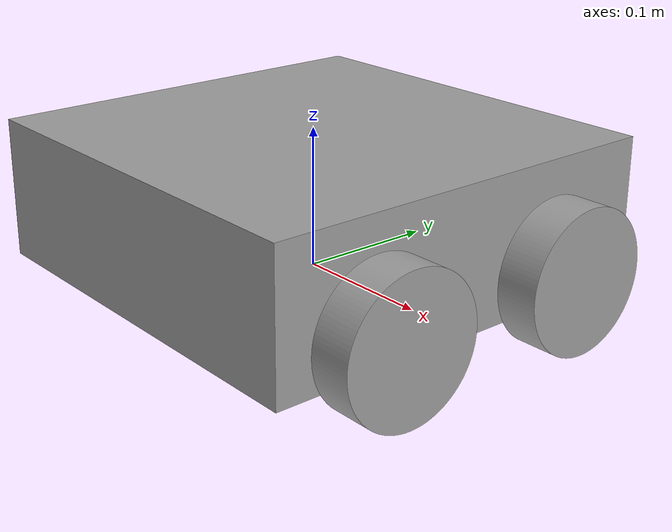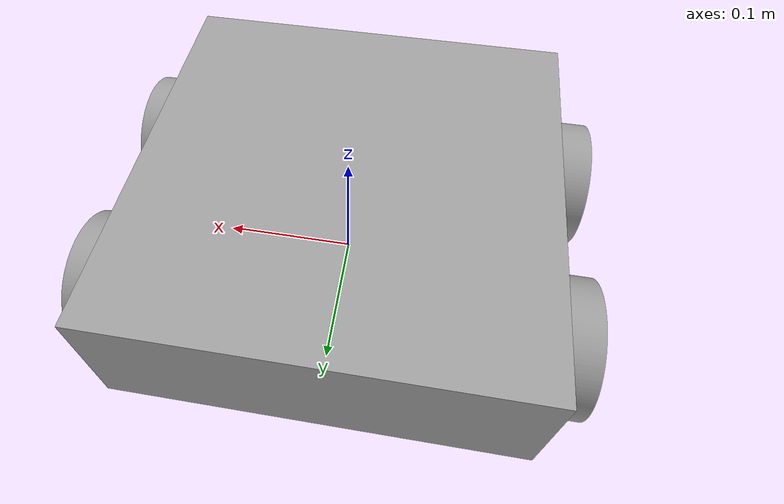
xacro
<?xml version="1.0" ?>
<robot xmlns:xacro="http://www.ros.org/wiki/xacro" name="diffbot">
  <xacro:property name="package_name" value="diffdrive_vesc"/>
  <xacro:include filename="$(find ${package_name})/urdf/materials.xacro"/>
  <xacro:include filename="$(find ${package_name})/ros2_control/diffbot.ros2_control.xacro" />

  <xacro:arg name="use_mock_hardware" default="false" />

  <link name="base_link">
    <inertial>
      <origin xyz="0.0000000000e+00 0.0000000000e+00 5.0000000000e-02" rpy="0.0 0.0 0.0"/>
      <mass value="7.0650000000e+01"/>
      <inertia ixx="5.8875000000e-01" iyy="5.8875000000e-01" izz="1.0597500000e+00" ixy="0.0000000000e+00" iyz="0.0000000000e+00" ixz="0.0000000000e+00"/>
    </inertial>
    <visual>
      <origin xyz="0.0000000000e+00 0.0000000000e+00 0.0000000000e+00" rpy="0.0 0.0 0.0"/>
      <geometry>
        <mesh filename="file://$(find ${package_name})/meshes/base.stl" scale="0.001 0.001 0.001"/>
      </geometry>
      <material name="Steel"/>
    </visual>
    <collision>
      <origin xyz="0.0000000000e+00 0.0000000000e+00 0.0000000000e+00" rpy="0.0 0.0 0.0"/>
      <geometry>
        <mesh filename="file://$(find ${package_name})/meshes/base_collision.stl" scale="0.001 0.001 0.001"/>
      </geometry>
    </collision>
  </link>

  <link name="front_left_wheel_link">
    <inertial>
      <origin xyz="-1.5000000000e-02 0.0000000000e+00 6.9388939039e-18" rpy="0.0 0.0 0.0"/>
      <mass value="1.8496126748e+00"/>
      <inertia ixx="2.3120158435e-03" iyy="1.2947288724e-03" izz="1.2947288724e-03" ixy="-3.4694469520e-18" iyz="2.1684043450e-18" ixz="-8.6736173799e-19"/>
    </inertial>
    <visual>
      <origin xyz="-1.8000000000e-01 7.5000000000e-02 -2.5000000000e-02" rpy="0.0 0.0 0.0"/>
      <geometry>
        <mesh filename="file://$(find ${package_name})/meshes/front_left_wheel.stl" scale="0.001 0.001 0.001"/>
      </geometry>
      <material name="Steel"/>
    </visual>
    <collision>
      <origin xyz="-1.8000000000e-01 7.5000000000e-02 -2.5000000000e-02" rpy="0.0 0.0 0.0"/>
      <geometry>
        <mesh filename="file://$(find ${package_name})/meshes/front_left_wheel_collision.stl" scale="0.001 0.001 0.001"/>
      </geometry>
      <xacro:if value="${'Steel' in existing_contact_coefficients}">
        <xacro:insert_block name="Steel_contact_coefficients"/>
      </xacro:if>

    </collision>
  </link>

  <joint name="front_left_wheel_joint" type="continuous">
    <origin xyz="1.8000000000e-01 -7.5000000000e-02 2.5000000000e-02" rpy="0.0 0.0 0.0"/>
    <parent link="base_link"/>
    <child link="front_left_wheel_link"/>
    <axis xyz="1.0 0.0 0.0"/>
  </joint>

  <link name="back_left_wheel_link">
    <inertial>
      <origin xyz="-1.5000000000e-02 0.0000000000e+00 6.9388939039e-18" rpy="0.0 0.0 0.0"/>
      <mass value="1.8496126748e+00"/>
      <inertia ixx="2.3120158435e-03" iyy="1.2947288724e-03" izz="1.2947288724e-03" ixy="-3.4694469520e-18" iyz="2.1684043450e-18" ixz="-8.6736173799e-19"/>
    </inertial>
    <visual>
      <origin xyz="-1.8000000000e-01 7.5000000000e-02 -2.5000000000e-02" rpy="0.0 0.0 0.0"/>
      <geometry>
        <mesh filename="file://$(find ${package_name})/meshes/back_left_wheel.stl" scale="0.001 0.001 0.001"/>
      </geometry>
      <material name="Steel"/>
    </visual>
    <collision>
      <origin xyz="-1.8000000000e-01 7.5000000000e-02 -2.5000000000e-02" rpy="0.0 0.0 0.0"/>
      <geometry>
        <mesh filename="file://$(find ${package_name})/meshes/back_left_wheel_collision.stl" scale="0.001 0.001 0.001"/>
      </geometry>
      <xacro:if value="${'Steel' in existing_contact_coefficients}">
        <xacro:insert_block name="Steel_contact_coefficients"/>
      </xacro:if>

    </collision>
  </link>

  <joint name="back_left_wheel_joint" type="continuous">
    <origin xyz="1.8000000000e-01 7.5000000000e-02 2.5000000000e-02" rpy="0.0 0.0 0.0"/>
    <parent link="base_link"/>
    <child link="back_left_wheel_link"/>
    <axis xyz="1.0 0.0 0.0"/>
  </joint>

  <link name="front_right_wheel_link">
    <inertial>
      <origin xyz="1.5000000000e-02 0.0000000000e+00 6.9388939039e-18" rpy="0.0 0.0 0.0"/>
      <mass value="1.8496126748e+00"/>
      <inertia ixx="2.3120158435e-03" iyy="1.2947288724e-03" izz="1.2947288724e-03" ixy="-3.4694469520e-18" iyz="2.1684043450e-18" ixz="-8.6736173799e-19"/>
    </inertial>
    <visual>
      <origin xyz="-1.5000000000e-01 7.5000000000e-02 -2.5000000000e-02" rpy="0.0 0.0 0.0"/>
      <geometry>
        <mesh filename="file://$(find ${package_name})/meshes/front_right_wheel.stl" scale="0.001 0.001 0.001"/>
      </geometry>
      <material name="Steel"/>
    </visual>
    <collision>
      <origin xyz="-1.5000000000e-01 7.5000000000e-02 -2.5000000000e-02" rpy="0.0 0.0 0.0"/>
      <geometry>
        <mesh filename="file://$(find ${package_name})/meshes/front_right_wheel_collision.stl" scale="0.001 0.001 0.001"/>
      </geometry>
      <xacro:if value="${'Steel' in existing_contact_coefficients}">
        <xacro:insert_block name="Steel_contact_coefficients"/>
      </xacro:if>

    </collision>
  </link>

  <joint name="front_right_wheel_joint" type="continuous">
    <origin xyz="-1.8000000000e-01 -7.5000000000e-02 2.5000000000e-02" rpy="0.0 0.0 0.0"/>
    <parent link="base_link"/>
    <child link="front_right_wheel_link"/>
    <axis xyz="1.0 0.0 0.0"/>
  </joint>

  <link name="back_right_wheel_link">
    <inertial>
      <origin xyz="1.5000000000e-02 0.0000000000e+00 6.9388939039e-18" rpy="0.0 0.0 0.0"/>
      <mass value="1.8496126748e+00"/>
      <inertia ixx="2.3120158435e-03" iyy="1.2947288724e-03" izz="1.2947288724e-03" ixy="-3.4694469520e-18" iyz="2.1684043450e-18" ixz="-8.6736173799e-19"/>
    </inertial>
    <visual>
      <origin xyz="-1.5000000000e-01 7.5000000000e-02 -2.5000000000e-02" rpy="0.0 0.0 0.0"/>
      <geometry>
        <mesh filename="file://$(find ${package_name})/meshes/back_right_wheel.stl" scale="0.001 0.001 0.001"/>
      </geometry>
      <material name="Steel"/>
    </visual>
    <collision>
      <origin xyz="-1.5000000000e-01 7.5000000000e-02 -2.5000000000e-02" rpy="0.0 0.0 0.0"/>
      <geometry>
        <mesh filename="file://$(find ${package_name})/meshes/back_right_wheel_collision.stl" scale="0.001 0.001 0.001"/>
      </geometry>
      <xacro:if value="${'Steel' in existing_contact_coefficients}">
        <xacro:insert_block name="Steel_contact_coefficients"/>
      </xacro:if>

    </collision>
  </link>

  <joint name="back_right_wheel_joint" type="continuous">
    <origin xyz="-1.8000000000e-01 7.5000000000e-02 2.5000000000e-02" rpy="0.0 0.0 0.0"/>
    <parent link="base_link"/>
    <child link="back_right_wheel_link"/>
    <axis xyz="1.0 0.0 0.0"/>
  </joint>

  <xacro:diffbot_ros2_control
    name="DiffBot" use_mock_hardware="$(arg use_mock_hardware)"/>

</robot>

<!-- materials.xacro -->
<robot xmlns:xacro="http://www.ros.org/wiki/xacro" name="diffbot">
  <material name="Steel">
    <color rgba="0.627 0.627 0.627 1.000"/>
  </material>
  <xacro:property name="existing_contact_coefficients" value="[]"/>
</robot>
